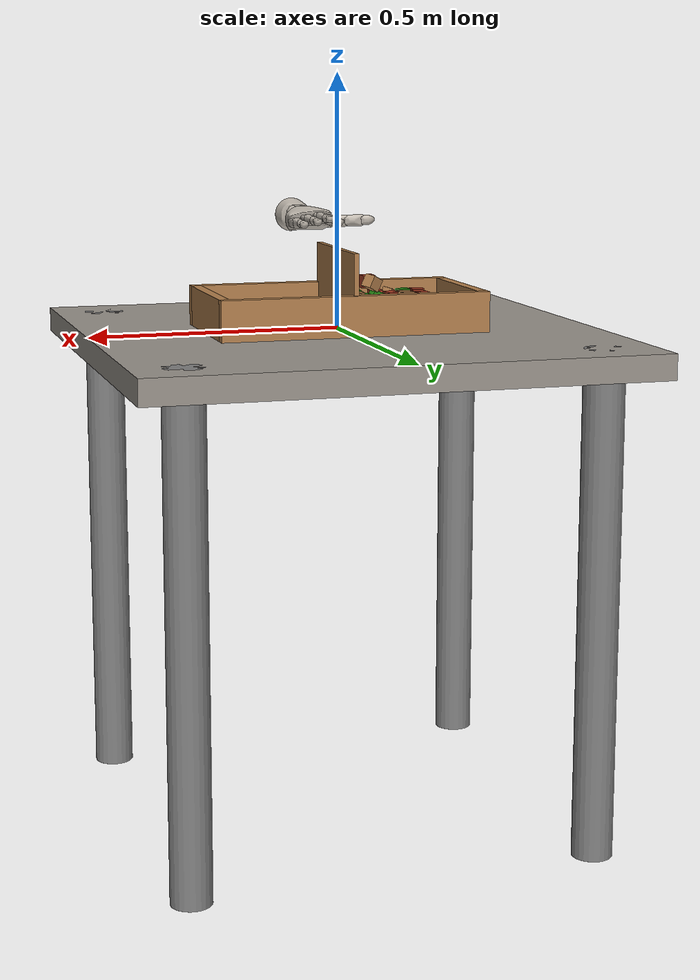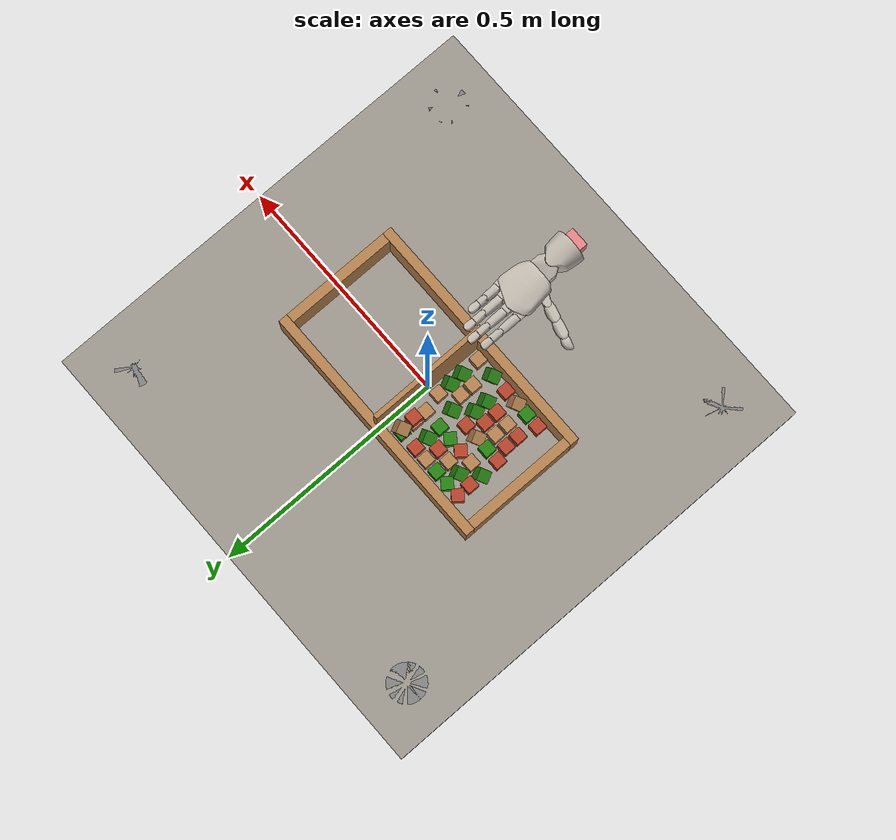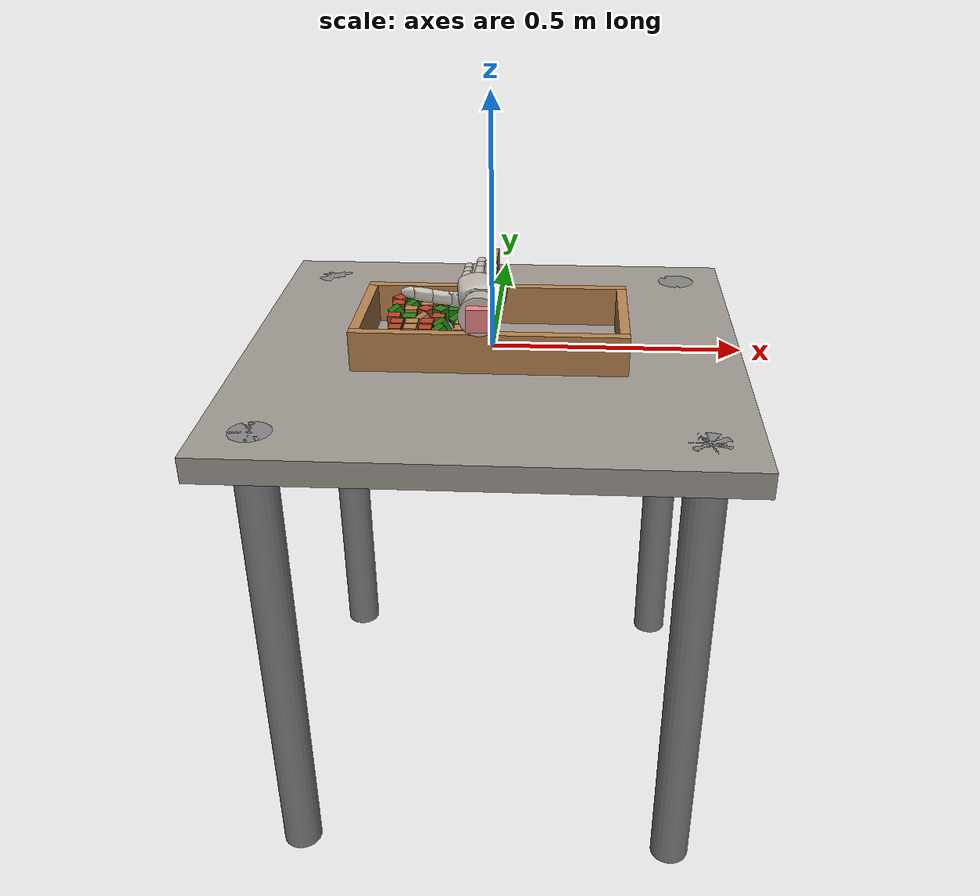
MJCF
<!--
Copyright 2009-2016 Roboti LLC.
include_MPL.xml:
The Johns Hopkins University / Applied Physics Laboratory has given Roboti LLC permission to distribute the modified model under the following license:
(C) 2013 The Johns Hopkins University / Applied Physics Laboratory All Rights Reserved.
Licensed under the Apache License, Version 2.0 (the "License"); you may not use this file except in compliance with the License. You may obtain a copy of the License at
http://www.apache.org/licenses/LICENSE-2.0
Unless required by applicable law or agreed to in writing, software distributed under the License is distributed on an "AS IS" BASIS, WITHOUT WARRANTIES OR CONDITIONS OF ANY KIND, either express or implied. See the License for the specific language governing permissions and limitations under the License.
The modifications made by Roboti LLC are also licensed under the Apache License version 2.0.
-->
<mujoco model="MPL boxes(v1.31)">
    <include file="include_MPL.xml"/>
    <include file="include_assets.xml"/>

    <option timestep="0.002" iterations="100" solver="CG"/>
    <size njmax="5000" nconmax="1000" nstack="1000000"/>

    <default>
        <default class="block">
            <geom type="box" size="0.0125 0.0125 0.0125"/>
        </default>
    </default>

    <worldbody>
        <geom type="plane" pos="0 0 0.001" size=".26 .13 .025" rgba=".5 .4 .2 1" />
        <geom type="box" pos="0 0 0.08"     size="0.005 0.13 0.08" material="MatWood"/>
        <geom type="box" pos="0 -0.13 0.04" size="0.27 0.01 0.04"  material="MatWood"/>
        <geom type="box" pos="0 0.13 0.04"  size="0.27 0.01 0.04"  material="MatWood"/>
        <geom type="box" pos="-0.26 0 0.04" size="0.01 0.12 0.04"  material="MatWood"/>
        <geom type="box" pos="0.26 0 0.04"  size="0.01 0.12 0.04"  material="MatWood"/>

      	<body name="blockL01" pos="-0.20 0.1 0.05" quat="1 0 0 0.5">
            <joint class="free"/>
            <geom class="block" material="MatWoodR"/>
        </body>

        <body name="blockL02" pos="-0.17 0.1 0.05" quat="1 0 0 0.5">
            <joint class="free"/>
            <geom class="block" material="MatWoodG"/>
        </body>

        <body name="blockL03" pos="-0.14 0.1 0.05" quat="1 1 0 0">
            <joint class="free"/>
            <geom class="block" material="MatWoodG"/>
        </body>

        <body name="blockL04" pos="-0.11 0.1 0.05">
            <joint class="free"/>
            <geom class="block" material="MatWoodB"/>
        </body>

        <body name="blockL05" pos="-0.08 0.1 0.05">
            <joint class="free"/>
            <geom class="block" material="MatWoodR"/>
        </body>

        <body name="blockL06" pos="-0.04 0.1 0.05">
            <joint class="free"/>
            <geom class="block" material="MatWoodG"/>
        </body>

        <body name="blockL07" pos="-0.04 0.1 0.1" quat="1 1 0 0.5">
            <joint class="free"/>
            <geom class="block" material="MatWoodB"/>
        </body>

        <body name="blockL08" pos="-0.20 0.07 0.05" quat="1 1 0 0">
            <joint class="free"/>
            <geom class="block" material="MatWoodR"/>
        </body>

        <body name="blockL09" pos="-0.17 0.07 0.05" quat="1 1 0 0.5">
            <joint class="free"/>
            <geom class="block" material="MatWoodG"/>
        </body>

        <body name="blockL10" pos="-0.14 0.07 0.05">
            <joint class="free"/>
            <geom class="block" material="MatWoodB"/>
        </body>

        <body name="blockL11" pos="-0.11 0.07 0.05" quat="1 1 0 0">
            <joint class="free"/>
            <geom class="block" material="MatWoodR"/>
        </body>

        <body name="blockL12" pos="-0.08 0.07 0.05" quat="1 1 0 0.5">
            <joint class="free"/>
            <geom class="block" material="MatWoodG"/>
        </body>

        <body name="blockL13" pos="-0.04 0.07 0.05">
            <joint class="free"/>
            <geom class="block" material="MatWoodB"/>
        </body>

        <body name="blockL14" pos="-0.04 0.07 0.1" quat="1 1 0 0">
            <joint class="free"/>
            <geom class="block" material="MatWoodR"/>
        </body>

        <body name="blockL15" pos="-0.20 0.04 0.05" quat="1 1 0 0.5">
            <joint class="free"/>
            <geom class="block" material="MatWoodG"/>
        </body>

        <body name="blockL16" pos="-0.17 0.04 0.05">
            <joint class="free"/>
            <geom class="block" material="MatWoodB"/>
        </body>

        <body name="blockL17" pos="-0.14 0.04 0.05" quat="1 0 0 0.5">
            <joint class="free"/>
            <geom class="block" material="MatWoodR"/>
        </body>

        <body name="blockL18" pos="-0.11 0.04 0.05" quat="1 0 0 0.5">
            <joint class="free"/>
            <geom class="block" material="MatWoodG"/>
        </body>

        <body name="blockL19" pos="-0.08 0.04 0.05" quat="1 1 0 0">
            <joint class="free"/>
            <geom class="block" material="MatWoodG"/>
        </body>

        <body name="blockL20" pos="-0.04 0.04 0.05">
            <joint class="free"/>
            <geom class="block" material="MatWoodB"/>
        </body>

        <body name="blockL21" pos="-0.20 0 0.05">
            <joint class="free"/>
            <geom class="block" material="MatWoodR"/>
        </body>

        <body name="blockL22" pos="-0.17 0 0.05">
            <joint class="free"/>
            <geom class="block" material="MatWoodG"/>
        </body>

        <body name="blockL23" pos="-0.14 0 0.05" quat="1 1 0 0.5">
            <joint class="free"/>
            <geom class="block" material="MatWoodB"/>
        </body>

        <body name="blockL24" pos="-0.11 0 0.05" quat="1 1 0 0">
            <joint class="free"/>
            <geom class="block" material="MatWoodR"/>
        </body>

        <body name="blockL25" pos="-0.07 0 0.05" quat="1 1 0 0.5">
            <joint class="free"/>
            <geom class="block" material="MatWoodG"/>
        </body>

        <body name="blockL26" pos="-0.03 0 0.05">
            <joint class="free"/>
            <geom class="block" material="MatWoodB"/>
        </body>

        <body name="blockL27" pos="-0.19 -0.03 0.05" quat="1 1 0 0">
            <joint class="free"/>
            <geom class="block" material="MatWoodR"/>
        </body>

        <body name="blockL28" pos="-0.03 -0.03 0.05" quat="1 1 0 0.5">
            <joint class="free"/>
            <geom class="block" material="MatWoodG"/>
        </body>

        <body name="blockL29" pos="-0.16 -0.03 0.05">
            <joint class="free"/>
            <geom class="block" material="MatWoodB"/>
        </body>

        <body name="blockL30" pos="-0.13 -0.03 0.05" quat="1 1 0 0">
            <joint class="free"/>
            <geom class="block" material="MatWoodR"/>
        </body>

        <body name="blockL31" pos="-0.10 -0.03 0.05" quat="1 1 0 0.5">
            <joint class="free"/>
            <geom class="block" material="MatWoodG"/>
        </body>

        <body name="blockL32" pos="-0.06 -0.03 0.05">
            <joint class="free"/>
            <geom class="block" material="MatWoodB"/>
        </body>

        <body name="blockL33" pos="-0.19 -0.06 0.05" quat="1 1 0 0">
            <joint class="free"/>
            <geom class="block" material="MatWoodR"/>
        </body>

        <body name="blockL34" pos="-0.03 -0.06 0.05" quat="1 1 0 0.5">
            <joint class="free"/>
            <geom class="block" material="MatWoodG"/>
        </body>

        <body name="blockL35" pos="-0.16 -0.06 0.05">
            <joint class="free"/>
            <geom class="block" material="MatWoodB"/>
        </body>

        <body name="blockL36" pos="-0.13 -0.06 0.05" quat="1 1 0 0">
            <joint class="free"/>
            <geom class="block" material="MatWoodR"/>
        </body>

        <body name="blockL37" pos="-0.10 -0.06 0.05" quat="1 1 0 0.5">
            <joint class="free"/>
            <geom class="block" material="MatWoodG"/>
        </body>

        <body name="blockL38" pos="-0.06 -0.06 0.05">
            <joint class="free"/>
            <geom class="block" material="MatWoodB"/>
        </body>

        <body name="blockL39" pos="-0.20 -0.1 0.05">
            <joint class="free"/>
            <geom class="block" material="MatWoodR"/>
        </body>

        <body name="blockL40" pos="-0.17 -0.1 0.05">
            <joint class="free"/>
            <geom class="block" material="MatWoodG"/>
        </body>

        <body name="blockL41" pos="-0.14 -0.1 0.05" quat="1 1 0 0.5">
            <joint class="free"/>
            <geom class="block" material="MatWoodB"/>
        </body>

        <body name="blockL42" pos="-0.11 -0.1 0.05" quat="1 1 0 0">
            <joint class="free"/>
            <geom class="block" material="MatWoodR"/>
        </body>

        <body name="blockL43" pos="-0.07 -0.1 0.05" quat="1 1 0 0.5">
            <joint class="free"/>
            <geom class="block" material="MatWoodG"/>
        </body>

        <body name="blockL44" pos="-0.03 -0.1 0.05">
            <joint class="free"/>
            <geom class="block" material="MatWoodB"/>
        </body>

    </worldbody>
</mujoco>

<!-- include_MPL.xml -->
<mujoco model="MPL(v1.31)">

    <compiler angle="radian" meshdir="mesh/" texturedir="texture/"/>
    <option timestep="0.002" iterations="50" apirate="50"/>
    <size njmax="600" nconmax="150" nstack="300000"/>

    <default>
		<default class="MPL">
			<geom material="MatMesh" contype="1" conaffinity="1" condim="4" margin="0.001"/>
        	<joint limited="true" damping="0.2" armature=".01"/>
        	<site material="MatTouch" type="ellipsoid" group="3"/>
            <position ctrllimited="true" kp="10"/>
		</default>

        <default class="IMU">
	        <site material="MatIMU" type="box" group="4"/>
        </default>

        <default class="free">
            <joint type="free" damping="0" armature="0" limited="false"/>
        </default>
    </default>

    <statistic extent="1" center="0 -0.2 0.2"/>

    <visual>
        <quality shadowsize="2048"/>
    	<map fogstart="6" fogend="10"/>
    	<headlight diffuse=".6 .6 .6" specular="0 0 0"/>
    </visual>

    <asset>
		<mesh name="index0" 	file="index0.obj"/>
		<mesh name="index1" 	file="index1.obj"/>
		<mesh name="index2" 	file="index2.obj"/>
		<mesh name="index3" 	file="index3.obj"/>
		<mesh name="middle0" 	file="middle0.obj"/>
		<mesh name="middle1" 	file="middle1.obj"/>
		<mesh name="middle2" 	file="middle2.obj"/>
		<mesh name="middle3" 	file="middle3.obj"/>
		<mesh name="palm" 		file="palm.obj"/>
		<mesh name="pinky0" 	file="pinky0.obj"/>
		<mesh name="pinky1" 	file="pinky1.obj"/>
		<mesh name="pinky2" 	file="pinky2.obj"/>
		<mesh name="pinky3" 	file="pinky3.obj"/>
		<mesh name="ring0" 		file="ring0.obj"/>
		<mesh name="ring1" 		file="ring1.obj"/>
		<mesh name="ring2" 		file="ring2.obj"/>
		<mesh name="ring3" 		file="ring3.obj"/>
		<mesh name="thumb0" 	file="thumb0.obj"/>
		<mesh name="thumb1" 	file="thumb1.obj"/>
		<mesh name="thumb2" 	file="thumb2.obj"/>
		<mesh name="thumb3" 	file="thumb3.obj"/>
		<mesh name="wristx" 	file="wristx.obj"/>
		<mesh name="wristy" 	file="wristy.obj"/>
		<mesh name="wristz" 	file="wristz.obj"/>

		<texture type="skybox" builtin="gradient" rgb1=".4 .6 .8" rgb2="0 0 0"
			width="100" height="100"/>
		<texture name="groundplane" type="2d" builtin="checker" rgb1=".2 .3 .4" rgb2=".1 .2 .3"
            width="100" height="100"/>
		<texture name="skin" type="cube" file="skin.png"/>
		<texture name="marble2d" type="2d" file="marble.png"/>
		<texture name="marblecube" type="cube" file="marble.png"/>

		<material name="groundplane" texture="groundplane" texrepeat="10 10"/>
		<material name="table2d" texture="marble2d" reflectance="0.3" rgba=".8 .8 .8 1"/>
		<material name="tablecube" texture="marblecube" rgba=".8 .8 .8 1"/>
        <material name="MatTouch" rgba=".3 .9 .3 .3"/>
        <material name="MatIMU" rgba=".1 .1 .9 1"/>
        <material name="MatMesh" texture="skin"/>
	</asset>

    <contact>
        <exclude body1="wristz" body2="wristy"/>
		<exclude body1="wristx" body2="thumb0"/>
		<exclude body1="palm" body2="thumb1"/>
        <exclude body1="palm" body2="index1"/>
        <exclude body1="palm" body2="middle1"/>
        <exclude body1="palm" body2="ring1"/>
        <exclude body1="palm" body2="pinky1"/>
    </contact>

    <worldbody>
        <light directional="false" cutoff="35" exponent="10" diffuse=".7 .7 .7" pos="0.4 -0.2 1.5" dir="-0.4 0.2 -1.5" specular=".3 .3 .3"/>

        <camera name="fixed" pos="0 -0.7 0.7" zaxis="0 -1 1" fovy="45" ipd="0.068"/>

		<geom type="plane" material="table2d" pos="0 0 0" size=".5 .5 .025"/>

		<geom contype="0" conaffinity="0" type="box" material="tablecube" pos="0 0 -0.026" size=".5 .5 .025"/>
		<geom contype="0" conaffinity="0" type="cylinder" fromto=".4 .4 -1.001 .4 .4 -0.001" size="0.04"/>
		<geom contype="0" conaffinity="0" type="cylinder" fromto="-.4 .4 -1.001 -.4 .4 -0.001" size="0.04"/>
		<geom contype="0" conaffinity="0" type="cylinder" fromto=".4 -.4 -1.001 .4 -.4 -0.001" size="0.04"/>
		<geom contype="0" conaffinity="0" type="cylinder" fromto="-.4 -.4 -1.001 -.4 -.4 -0.001" size="0.04"/>
        <geom contype="0" conaffinity="0" type="plane" pos="0 0 -1" size="10 10 0.25" material="groundplane"/>

        <body name="mocap" mocap="true" pos="0 -0.35 0.2" axisangle="0 0 1 3.141592">
            <geom type="box" group="1" size="0.02 0.02 0.02" contype="0" conaffinity="0" rgba=".9 .5 .5 1"/>
        </body>

		<!-- ======= ROBOT ======= -->
        <body childclass="MPL" name="forearm" pos="0 -0.35 0.2" axisangle="0 0 1 3.141592">
            <joint class="free"/>
            <geom type="cylinder" size="0.02 0.01" zaxis="0 1 0"/>
            <body name="wristy" pos="0 0 0">
                <inertial pos="-7.08369e-005 -0.0217787 -0.000286168" quat="0.707488 0.00581744 -0.0107421 0.70662" mass="0.0272932" diaginertia="2.46813e-005 1.77029e-005 1.71079e-005" />
                <geom type="mesh" mesh="wristy"/>
                <joint name="wrist_PRO" type="hinge" damping="0.4" pos="0 0 0" axis="0 1 0" range="-1.57 1.57"/>
                <body name="wristx" pos="-3.36826e-005 -0.0476452 0.00203763">
                    <inertial pos="0.00139174 -0.00975189 -0.00252668" quat="-0.0729226 0.705959 0.0352732 0.703605" mass="0.010691" diaginertia="5.04455e-006 4.25035e-006 3.25677e-006" />
                    <joint name="wrist_UDEV" damping="0.4" type="hinge" pos="0 0 0" axis="0 0 -1" range="-0.261 0.785"/>
                    <geom type="mesh" mesh="wristx"/>
                    <body name="wristz" pos="0.0001872 -0.03 -0.002094">
                        <inertial pos="0.000579016 -0.00125952 0.000455968" quat="0.527723 0.475346 0.521597 0.472749" mass="0.00602247" diaginertia="1.58133e-006 1.43102e-006 1.26861e-006" />
                        <joint name="wrist_FLEX" damping="0.4" type="hinge" pos="0 0 0" axis="1 0 0" range="-1.04 1.04"/>
                        <geom type="mesh" mesh="wristz"/>

		  			    <!-- ======= PALM  ======= -->
                        <body name="palm" pos="0.025625 0 0">
                            <inertial pos="-0.0217876 -0.0376147 0.00276997" quat="-0.146373 0.723094 0.0985561 0.66783" mass="0.119867" diaginertia="0.000123088 0.000100082 6.89467e-005" />
                            <geom type="mesh" mesh="palm"/>
                            <site name="palm_thumb" pos="-0.0052 -0.0438 -0.0182" size=".017 .03 .01"/>
                            <site name="palm_pinky" pos="-0.0358 -0.0401 -0.0183" size=".017 .03 .01"/>
                            <site name="palm_side" pos="-0.0604 -0.0329 -0.0048" size=".01 .03 .015"/>
                            <site name="palm_back" pos="-0.0246 -0.0446 0.018" size=".03 .035 .015"/>

                            <!-- ======= THUMB ======= -->
                            <body name="thumb0" pos="0.00835752 -0.0206978 -0.010093" quat="0.990237 0.0412644 -0.0209178 -0.13149">
                                <inertial pos="0.00863339 -0.000156884 -0.000945846" quat="0.408795 0.551643 0.541079 0.485602" mass="0.00336696" diaginertia="4.50769e-007 4.48758e-007 2.35017e-007" />
                                <joint name="thumb_ABD" type="hinge" pos="0 0 0" axis="0 1 0" range="0 2.07"/>
                                <geom type="mesh" mesh="thumb0"/>
                                <body name="thumb1" pos="0.0209172 -0.00084 0.0014476">
                                    <inertial pos="0.019024 0.000361131 -0.000186763" quat="0.5208 0.469572 0.484571 0.522934" mass="0.00596213" diaginertia="9.88001e-007 9.45125e-007 5.32989e-007" />
                                    <joint name="thumb_MCP" type="hinge" pos="0 0 0" axis="0 0 -1" range="0 1.03"/>
                                    <geom type="mesh" mesh="thumb1"/>
                                    <site name="thumb_proximal" pos="0.0173 -0.008 0.0009" size=".015 .0075 .01"/>
                                    <body name="thumb2" pos="0.0335 0 -0.0007426">
                                        <inertial pos="0.0188965 0.000375725 0.00065381" quat="0.502274 0.484638 0.475673 0.535333" mass="0.00599792" diaginertia="9.96692e-007 9.64948e-007 5.14416e-007" />
                                        <joint name="thumb_PIP" type="hinge" pos="0 0 0" axis="0 0 -1" range="0 1.03"/>
                                        <geom type="mesh" mesh="thumb2"/>
                                        <site name="thumb_medial" pos="0.0182 -0.008 0.0015" size=".015 .0075 .01"/>
                                        <body name="thumb3" pos="0.0335 0 0.0010854">
                                        	<inertial pos="0.0188965 0.000375725 0.00065381" quat="0.502274 0.484638 0.475673 0.535333" mass="0.00599792" diaginertia="9.96692e-007 9.64948e-007 5.14416e-007" />
                                            <joint name="thumb_DIP" type="hinge" pos="0 0 0" axis="0 0 -1" range="-0.819 1.28"/>
                                            <geom type="mesh" mesh="thumb3"/>
                                            <site name="thumb_distal" pos="0.0156 -0.007 0.0003" size=".015 .0075 .01" axisangle="0 0 1 0.2"/>
                                            <site class="IMU" name="thumb_IMU" pos="0.0099 -0.00052 0" quat=".5 .5 .5 .5" size=".003 .003 .003"/>
                                        </body>
                                    </body>
                                </body>
                            </body>

		  				    <!-- ======= INDEX ======= -->
                            <body name="index0" pos="0.00986485 -0.0658 0.00101221" quat="0.996195 0 0.0871557 0">
                                <inertial pos="-0.000142572 -0.00548494 0.000206145" quat="0.699132 0.714861 -0.000723869 0.013694" mass="0.00295579" diaginertia="4.22462e-007 4.02281e-007 1.93868e-007" />
                                <joint name="index_ABD" type="hinge" pos="0 0 0" axis="0 0 1" range="0 0.345"/>
                                <geom type="mesh" mesh="index0"/>
                                <body name="index1" pos="6.26e-005 -0.018 0">
                                    <inertial pos="0.000406487 -0.0213125 0.000655609" quat="0.698452 0.715642 -0.00415384 0.0023049" mass="0.00478235" diaginertia="8.18599e-007 7.95693e-007 3.06254e-007" />
                                    <joint name="index_MCP" type="hinge" pos="0 0 0" axis="1 0 0" range="-0.785 1.57"/>
                                    <geom type="mesh" mesh="index1"/>
                                    <site name="index_proximal" pos="0 -0.0235 -0.007" size=".009 .015 .0075"/>
                                    <body name="index2" pos="0.001086 -0.0435 0.0005">
                                        <inertial pos="-0.000841462 -0.012689 0.000572665" quat="0.734882 0.677481 -0.028511 0.0124827" mass="0.00344764" diaginertia="3.63962e-007 3.59059e-007 1.05304e-007" />
                                        <joint name="index_PIP" type="hinge" pos="0 0 0" axis="1 0 0" range="0 1.72"/>
                                        <geom type="mesh" mesh="index2"/>
                                        <site name="index_medial" pos="0 -0.009 -0.0047" size=".0075 .01 .006"/>
                                        <body name="index3" pos="-0.000635 -0.0245 0">
                                            <inertial pos="4.32004e-005 -0.0125318 0.000903476" quat="0.516251 0.4829 -0.483241 0.516498" mass="0.00274415" diaginertia="1.19635e-007 1.09202e-007 7.77873e-008" />
                                            <joint name="index_DIP" type="hinge" pos="0 0 0" axis="1 0 0" range="0 1.38"/>
                                            <geom type="mesh" mesh="index3"/>
                                            <site name="index_distal" pos="0 -0.0132 -0.0038" size=".0075 .01 .006"/>
                                            <site class="IMU" name="index_IMU" pos="0 -0.0093 0.00063" quat=".5 .5 -.5 .5" size=".003 .003 .003"/>
                                        </body>
                                    </body>
                                </body>
                            </body>

		  				    <!-- ======= MIDDLE ======= -->
                            <body name="middle0" pos="-0.012814 -0.0779014 0.00544608" quat="-3.14 0.0436194 0 0">
                                <inertial pos="-0.000142567 -0.00548493 0.000206162" quat="0.699131 0.714862 -0.000723874 0.013694" mass="0.00295579" diaginertia="4.22461e-007 4.02281e-007 1.93868e-007" />
                                <geom type="mesh" mesh="middle0"/>
                                <body name="middle1" pos="6.26e-005 -0.018 0">
                                    <inertial pos="0.000406411 -0.0213125 0.00065565" quat="0.698451 0.715642 -0.00415503 0.00230486" mass="0.00478229" diaginertia="8.18595e-007 7.9569e-007 3.06253e-007" />
                                    <joint name="middle_MCP" type="hinge" pos="0 0 0" axis="1 0 0" range="-0.785 1.57"/>
                                    <geom type="mesh" mesh="middle1"/>
                                    <site name="middle_proximal" pos="0 -0.025 -0.007" size=".009 .015 .0075"/>
                                    <body name="middle2" pos="0.001086 -0.0435 0.0005">
                                        <inertial pos="-0.000841444 -0.012689 0.00057266" quat="0.734883 0.677482 -0.0284727 0.0124412" mass="0.00344765" diaginertia="3.63962e-007 3.5906e-007 1.05304e-007" />
                                        <joint name="middle_PIP" type="hinge" pos="0 0 0" axis="1 0 0" range="0 1.73"/>
                                        <geom type="mesh" mesh="middle2"/>
                                        <site name="middle_medial" pos="0 -0.0146 -0.0047" size=".0075 .01 .006"/>
                                        <body name="middle3" pos="-0.000635 -0.0245 0">
                                            <inertial pos="4.31236e-005 -0.0125318 0.000903446" quat="0.516263 0.482913 -0.483228 0.516487" mass="0.00274417" diaginertia="1.19635e-007 1.09202e-007 7.77884e-008" />
                                            <joint name="middle_DIP" type="hinge" pos="0 0 0" axis="1 0 0" range="0 1.38"/>
                                            <geom type="mesh" mesh="middle3"/>
                                            <site name="middle_distal" pos="0 -0.0129 -0.0038" size=".0075 .01 .006"/>
                                            <site class="IMU" name="middle_IMU" pos="0 -0.0093 0.00063" quat=".5 .5 -.5 .5" size=".003 .003 .003"/>
                                        </body>
                                    </body>
                                </body>
                            </body>

	  				        <!-- ======= RING ======= -->
                            <body name="ring0" pos="-0.0354928 -0.0666999 0.00151221" quat="0.996195 0 -0.0871557 0">
                                <inertial pos="-0.000142559 -0.00548494 0.000206147" quat="0.699132 0.714861 -0.000720946 0.013691" mass="0.00295579" diaginertia="4.22462e-007 4.02281e-007 1.93868e-007" />
                                <joint name="ring_ABD" type="hinge" pos="0 0 0" axis="0 0 -1" range="0 0.345"/>
                                <geom type="mesh" mesh="ring0"/>
                                <body name="ring1" pos="6.26e-005 -0.018 0">
                                    <inertial pos="0.000406447 -0.0213125 0.00065563" quat="0.698451 0.715642 -0.00415675 0.00230715" mass="0.00478232" diaginertia="8.18597e-007 7.95692e-007 3.06254e-007" />
                                    <joint name="ring_MCP" type="hinge" pos="0 0 0" axis="1 0 0" range="-0.785 1.57"/>
                                    <geom type="mesh" mesh="ring1"/>
                                    <site name="ring_proximal" pos="0 -0.0259 -0.007" size=".009 .015 .0075"/>
                                    <body name="ring2" pos="0.001086 -0.0435 0.0005">
                                        <inertial pos="-0.000841518 -0.012689 0.000572674" quat="0.73488 0.677478 -0.0285773 0.0125557" mass="0.00344767" diaginertia="3.63963e-007 3.59061e-007 1.05305e-007" />
                                        <joint name="ring_PIP" type="hinge" pos="0 0 0" axis="1 0 0" range="0 1.72"/>
                                        <geom type="mesh" mesh="ring2"/>
                                        <site name="ring_medial" pos="0 -0.0137 -0.0047" size=".0075 .01 .006"/>
                                        <body name="ring3" pos="-0.000635 -0.0245 0">
                                            <inertial pos="4.31973e-005 -0.0125318 0.000903457" quat="0.516255 0.482902 -0.483238 0.516495" mass="0.00274416" diaginertia="1.19635e-007 1.09202e-007 7.77877e-008" />
                                            <joint name="ring_DIP" type="hinge" pos="0 0 0" axis="1 0 0" range="0 1.38"/>
                                            <geom type="mesh" mesh="ring3"/>
                                            <site name="ring_distal" pos="0 -0.0117 -0.0038" size=".0075 .01 .006"/>
                                            <site class="IMU" name="ring_IMU" pos="0 -0.0093 0.00063" quat=".5 .5 -.5 .5" size=".003 .003 .003"/>
                                        </body>
                                    </body>
                                </body>
                            </body>

		  				    <!-- ======= LITTLE ======= -->
                            <body name="pinky0" pos="-0.0562459 -0.0554001 -0.00563858" quat="0.996195 0 -0.0871557 0">
                                <inertial pos="-0.000142559 -0.00538484 0.000206147" quat="0.699132 0.714861 -0.000721037 0.0136911" mass="0.00295579" diaginertia="4.22462e-007 4.02281e-007 1.93868e-007" />
                                <joint name="pinky_ABD" type="hinge" pos="0 0 0" axis="0 0 -1" range="0 0.345"/>
                                <geom type="mesh" mesh="pinky0"/>
                                <body name="pinky1" pos="6.26e-005 -0.0178999 0">
                                    <inertial pos="0.000458624 -0.0160478 0.000924735" quat="0.685529 0.72723 0.021252 -0.0270914" mass="0.0034099" diaginertia="4.03391e-007 3.84061e-007 2.19866e-007" />
                                    <joint name="pinky_MCP" type="hinge" pos="0 0 0" axis="1 0 0" range="-0.785 1.57"/>
                                    <geom type="mesh" mesh="pinky1"/>
                                    <site name="pinky_proximal" pos="0 -0.021 -0.0066" size=".009 .013 .0075"/>
                                    <body name="pinky2" pos="0.000578 -0.033 0.0005">
                                        <inertial pos="-0.000270832 -0.00914628 0.000738493" quat="0.746786 0.664476 -4.11065e-005 -0.0279675" mass="0.00250622" diaginertia="1.79089e-007 1.75934e-007 7.44543e-008" />
                                        <joint name="pinky_PIP" type="hinge" pos="0 0 0" axis="1 0 0" range="0 1.72"/>
                                        <geom type="mesh" mesh="pinky2"/>
                                        <site name="pinky_medial" pos="0 -0.0117 -0.0047" size=".0075 .01 .006"/>
                                        <body name="pinky3" pos="-4.78e-005 -0.0175 0">
                                            <inertial pos="3.85026e-005 -0.0125047 0.000912295" quat="0.516037 0.484447 -0.483043 0.515448" mass="0.00273265" diaginertia="1.19141e-007 1.08629e-007 7.77271e-008" />
                                            <joint name="pinky_DIP" type="hinge" pos="0 0 0" axis="1 0 0" range="0 1.38"/>
                                            <geom type="mesh" mesh="pinky3"/>
                                            <site name="pinky_distal" pos="0 -0.0121 -0.0038" size=".0075 .01 .006"/>
                                            <site class="IMU" name="pinky_IMU" pos="0 -0.0093 0.00063" quat=".5 .5 -.5 .5" size=".003 .003 .003"/>
                                        </body>
                                    </body>
                                </body>
                            </body>
                        </body>
                    </body>
                </body>
            </body>
        </body>
    </worldbody>

	<sensor>
        <jointpos name="Sjp_wrist_PRO"	joint="wrist_PRO"/>
    	<jointpos name="Sjp_wrist_UDEV" joint="wrist_UDEV"/>
    	<jointpos name="Sjp_wrist_FLEX" joint="wrist_FLEX"/>
        <jointpos name="Sjp_thumb_ABD"	joint="thumb_ABD"/>
        <jointpos name="Sjp_thumb_MCP"  joint="thumb_MCP"/>
        <jointpos name="Sjp_thumb_PIP"  joint="thumb_PIP"/>
        <jointpos name="Sjp_thumb_DIP"  joint="thumb_DIP"/>
    	<jointpos name="Sjp_index_ABD"  joint="index_ABD"/>
    	<jointpos name="Sjp_index_MCP"  joint="index_MCP"/>
    	<jointpos name="Sjp_index_PIP"  joint="index_PIP"/>
    	<jointpos name="Sjp_index_DIP"  joint="index_DIP"/>
    	<jointpos name="Sjp_middle_MCP" joint="middle_MCP"/>
    	<jointpos name="Sjp_middle_PIP" joint="middle_PIP"/>
    	<jointpos name="Sjp_middle_DIP"	joint="middle_DIP"/>
    	<jointpos name="Sjp_ring_ABD"   joint="ring_ABD"/>
    	<jointpos name="Sjp_ring_MCP"   joint="ring_MCP"/>
    	<jointpos name="Sjp_ring_PIP"   joint="ring_PIP"/>
    	<jointpos name="Sjp_ring_DIP"   joint="ring_DIP"/>
    	<jointpos name="Sjp_pinky_ABD"  joint="pinky_ABD"/>
    	<jointpos name="Sjp_pinky_MCP"  joint="pinky_MCP"/>
    	<jointpos name="Sjp_pinky_PIP"  joint="pinky_PIP"/>
    	<jointpos name="Sjp_pinky_DIP"  joint="pinky_DIP"/>

		<jointvel name="Sjv_wrist_PRO"  joint="wrist_PRO"/>
    	<jointvel name="Sjv_wrist_UDEV" joint="wrist_UDEV"/>
    	<jointvel name="Sjv_wrist_FLEX" joint="wrist_FLEX"/>
        <jointvel name="Sjv_thumb_ABD"  joint="thumb_ABD"/>
        <jointvel name="Sjv_thumb_MCP"  joint="thumb_MCP"/>
        <jointvel name="Sjv_thumb_PIP"  joint="thumb_PIP"/>
        <jointvel name="Sjv_thumb_DIP"  joint="thumb_DIP"/>
    	<jointvel name="Sjv_index_ABD"  joint="index_ABD"/>
    	<jointvel name="Sjv_index_MCP"  joint="index_MCP"/>
    	<jointvel name="Sjv_index_PIP"  joint="index_PIP"/>
    	<jointvel name="Sjv_index_DIP"  joint="index_DIP"/>
    	<jointvel name="Sjv_middle_MCP" joint="middle_MCP"/>
    	<jointvel name="Sjv_middle_PIP" joint="middle_PIP"/>
    	<jointvel name="Sjv_middle_DIP" joint="middle_DIP"/>
    	<jointvel name="Sjv_ring_ABD"   joint="ring_ABD"/>
    	<jointvel name="Sjv_ring_MCP"   joint="ring_MCP"/>
    	<jointvel name="Sjv_ring_PIP"   joint="ring_PIP"/>
    	<jointvel name="Sjv_ring_DIP"   joint="ring_DIP"/>
    	<jointvel name="Sjv_pinky_ABD"  joint="pinky_ABD"/>
    	<jointvel name="Sjv_pinky_MCP"  joint="pinky_MCP"/>
    	<jointvel name="Sjv_pinky_PIP"  joint="pinky_PIP"/>
    	<jointvel name="Sjv_pinky_DIP"  joint="pinky_DIP"/>

        <actuatorpos name="Sap_wrist_PRO" 	actuator="A_wrist_PRO" />
    	<actuatorpos name="Sap_wrist_UDEV"	actuator="A_wrist_UDEV" />
    	<actuatorpos name="Sap_wrist_FLEX"	actuator="A_wrist_FLEX" />
        <actuatorpos name="Sap_thumb_ABD" 	actuator="A_thumb_ABD" />
        <actuatorpos name="Sap_thumb_MCP" 	actuator="A_thumb_MCP" />
        <actuatorpos name="Sap_thumb_PIP" 	actuator="A_thumb_PIP" />
        <actuatorpos name="Sap_thumb_DIP" 	actuator="A_thumb_DIP" />
        <actuatorpos name="Sap_index_ABD" 	actuator="A_index_ABD" />
    	<actuatorpos name="Sap_index_MCP" 	actuator="A_index_MCP" />
    	<actuatorpos name="Sap_middle_MCP"	actuator="A_middle_MCP"/>
    	<actuatorpos name="Sap_ring_MCP"  	actuator="A_ring_MCP"  />
        <actuatorpos name="Sap_pinky_ABD" 	actuator="A_pinky_ABD" />
    	<actuatorpos name="Sap_pinky_MCP" 	actuator="A_pinky_MCP" />

        <actuatorvel name="Sav_wrist_PRO" 	actuator="A_wrist_PRO" />
        <actuatorvel name="Sav_wrist_UDEV"	actuator="A_wrist_UDEV"/>
        <actuatorvel name="Sav_wrist_FLEX"	actuator="A_wrist_FLEX"/>
        <actuatorvel name="Sav_thumb_ABD" 	actuator="A_thumb_ABD" />
        <actuatorvel name="Sav_thumb_MCP" 	actuator="A_thumb_MCP" />
        <actuatorvel name="Sav_thumb_PIP" 	actuator="A_thumb_PIP" />
        <actuatorvel name="Sav_thumb_DIP" 	actuator="A_thumb_DIP" />
        <actuatorvel name="Sav_index_ABD" 	actuator="A_index_ABD" />
        <actuatorvel name="Sav_index_MCP" 	actuator="A_index_MCP" />
        <actuatorvel name="Sav_middle_MCP"	actuator="A_middle_MCP"/>
        <actuatorvel name="Sav_ring_MCP"  	actuator="A_ring_MCP"  />
        <actuatorvel name="Sav_pinky_ABD" 	actuator="A_pinky_ABD" />
        <actuatorvel name="Sav_pinky_MCP" 	actuator="A_pinky_MCP" />

        <actuatorfrc name="Saf_wrist_PRO" 	actuator="A_wrist_PRO"/>
        <actuatorfrc name="Saf_wrist_UDEV" 	actuator="A_wrist_UDEV"/>
        <actuatorfrc name="Saf_wrist_FLEX" 	actuator="A_wrist_FLEX"/>
        <actuatorfrc name="Saf_thumb_ABD" 	actuator="A_thumb_ABD"/>
        <actuatorfrc name="Saf_thumb_MCP" 	actuator="A_thumb_MCP"/>
        <actuatorfrc name="Saf_thumb_PIP" 	actuator="A_thumb_PIP"/>
        <actuatorfrc name="Saf_thumb_DIP" 	actuator="A_thumb_DIP"/>
        <actuatorfrc name="Saf_index_ABD" 	actuator="A_index_ABD"/>
        <actuatorfrc name="Saf_index_MCP" 	actuator="A_index_MCP"/>
        <actuatorfrc name="Saf_middle_MCP" 	actuator="A_middle_MCP"/>
        <actuatorfrc name="Saf_ring_MCP"  	actuator="A_ring_MCP"/>
        <actuatorfrc name="Saf_pinky_ABD" 	actuator="A_pinky_ABD"/>
        <actuatorfrc name="Saf_pinky_MCP" 	actuator="A_pinky_MCP"/>

    	<accelerometer name="S_thumb_IMU" 	site="thumb_IMU"/>
    	<accelerometer name="S_index_IMU" 	site="index_IMU"/>
    	<accelerometer name="S_middle_IMU" 	site="middle_IMU"/>
    	<accelerometer name="S_ring_IMU" 	site="ring_IMU"/>
    	<accelerometer name="S_pinky_IMU" 	site="pinky_IMU"/>

        <gyro                               site="thumb_IMU"/>
        <gyro                               site="index_IMU"/>
        <gyro                               site="middle_IMU"/>
        <gyro                               site="ring_IMU"/>
        <gyro                               site="pinky_IMU"/>

    	<touch name="S_palm_thumb" 		site="palm_thumb"/>
    	<touch name="S_palm_pinky" 		site="palm_pinky"/>
    	<touch name="S_palm_side" 		site="palm_side"/>
    	<touch name="S_palm_back" 		site="palm_back"/>
    	<touch name="S_thumb_proximal" 	site="thumb_proximal"/>
    	<touch name="S_thumb_medial" 	site="thumb_medial"/>
    	<touch name="S_thumb_distal" 	site="thumb_distal"/>
    	<touch name="S_index_proximal" 	site="index_proximal"/>
    	<touch name="S_index_medial" 	site="index_medial"/>
    	<touch name="S_index_distal" 	site="index_distal"/>
    	<touch name="S_middle_proximal" site="middle_proximal"/>
    	<touch name="S_middle_medial" 	site="middle_medial"/>
    	<touch name="S_middle_distal" 	site="middle_distal"/>
    	<touch name="S_ring_proximal" 	site="ring_proximal"/>
    	<touch name="S_ring_medial" 	site="ring_medial"/>
    	<touch name="S_ring_distal" 	site="ring_distal"/>
    	<touch name="S_pinky_proximal" 	site="pinky_proximal"/>
    	<touch name="S_pinky_medial" 	site="pinky_medial"/>
    	<touch name="S_pinky_distal" 	site="pinky_distal"/>
	</sensor>

	<tendon>
		<!--Index coupler tendons-->
		<fixed name="T_index32_cpl" range="0 1">
			<joint joint="index_DIP"  coef="0.00705"/>
			<joint joint="index_PIP"  coef="-0.00805"/>
		</fixed>
		<fixed name="T_index21_cpl" range="0 1">
			<joint joint="index_PIP"  coef="0.010"/>
			<joint joint="index_MCP"  coef="-0.010"/>
		</fixed>

		<!--Middle coupler tendons-->
		<fixed name="T_middle32_cpl">
			<joint joint="middle_DIP"  coef="0.00705"/>
			<joint joint="middle_PIP"  coef="-0.00805"/>
		</fixed>
		<fixed name="T_middle21_cpl">
			<joint joint="middle_PIP"  coef="0.010"/>
			<joint joint="middle_MCP"  coef="-0.010"/>
		</fixed>

		<!--Ring coupler tendons-->
		<fixed name="T_ring32_cpl">
			<joint joint="ring_DIP"  coef="0.00705"/>
			<joint joint="ring_PIP"  coef="-0.00805"/>
		</fixed>
		<fixed name="T_ring21_cpl">
			<joint joint="ring_PIP"  coef="0.010"/>
			<joint joint="ring_MCP"  coef="-0.010"/>
		</fixed>

		<!--Little coupler tendons-->
		<fixed name="T_pinky32_cpl">
			<joint joint="pinky_DIP"  coef="0.00705"/>
			<joint joint="pinky_PIP"  coef="-0.00805"/>
		</fixed>
		<fixed name="T_pinky21_cpl">
			<joint joint="pinky_PIP"  coef="0.010"/>
			<joint joint="pinky_MCP"  coef="-0.010"/>
		</fixed>

	</tendon>

	<equality>
        <weld body1="mocap" body2="forearm" solref="0.01 1" solimp=".9 .9 0.01"/>

		<!-- DIP-PIP-MCP Couplings -->
		<tendon name="E_index32_cpl" 	tendon1="T_index32_cpl"/>
		<tendon name="E_index21_cpl" 	tendon1="T_index21_cpl"/>
		<tendon name="E_middle32_cpl" 	tendon1="T_middle32_cpl"/>
		<tendon name="E_middle21_cpl" 	tendon1="T_middle21_cpl"/>
		<tendon name="E_ring32_cpl" 	tendon1="T_ring32_cpl"/>
		<tendon name="E_ring21_cpl" 	tendon1="T_ring21_cpl"/>
		<tendon name="E_pinky32_cpl" 	tendon1="T_pinky32_cpl"/>
		<tendon name="E_pinky21_cpl" 	tendon1="T_pinky21_cpl"/>

		<!-- AD-AB Coupling -->
		<joint name="ring_pinky_cpl" joint1="ring_ABD" joint2="pinky_ABD" polycoef="0 0.5 0 0 0"/>
	</equality>

	<actuator>
		<!-- Wrist -->
        <position name="A_wrist_PRO"  class="MPL" joint="wrist_PRO"  ctrlrange="-1.57 1.57"/>
		<position name="A_wrist_UDEV" class="MPL" joint="wrist_UDEV" ctrlrange="-0.26 0.79"/>
		<position name="A_wrist_FLEX" class="MPL" joint="wrist_FLEX" ctrlrange="-1 1"/>

        <!-- Thumb -->
        <position name="A_thumb_ABD"  class="MPL" joint="thumb_ABD"  ctrlrange="0 2.1"/>
        <position name="A_thumb_MCP"  class="MPL" joint="thumb_MCP"  ctrlrange="0 1.0"/>
        <position name="A_thumb_PIP"  class="MPL" joint="thumb_PIP"  ctrlrange="0 1.0"/>
        <position name="A_thumb_DIP"  class="MPL" joint="thumb_DIP"  ctrlrange="-0.82 1.3"/>

		<!-- Fingers -->
        <position name="A_index_ABD"  class="MPL" joint="index_ABD"  ctrlrange="0 0.34"/>
		<position name="A_index_MCP"  class="MPL" joint="index_MCP"  ctrlrange="0 1.6"/>
		<position name="A_middle_MCP" class="MPL" joint="middle_MCP" ctrlrange="0 1.6"/>
		<position name="A_ring_MCP"   class="MPL" joint="ring_MCP" 	 ctrlrange="0 1.6"/>
        <position name="A_pinky_ABD"  class="MPL" joint="pinky_ABD"  ctrlrange="0 0.34"/>
		<position name="A_pinky_MCP"  class="MPL" joint="pinky_MCP"  ctrlrange="0 1.6"/>
	</actuator>
</mujoco>

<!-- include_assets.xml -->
<mujoco>
	<asset>
		<texture file="wood.png"/>
		<texture name="wood2d" type="2d" file="wood.png"/>
		<texture file="square.png"/>
		<texture name="foil" file="silverRaw.png"/>
        <texture file="woodb.png"/>

		<material name="MatFoil" texture="foil" specular="1" shininess=".3"  rgba=".9 .9 .9 1"/>
		<material name="MatPlane" specular=".3" shininess=".3" rgba=".3 .3 .2 1"/>
        <material name="MatWood" texture="wood" specular="0.4" shininess=".1" texrepeat="3 3"/>
        <material name="MatSquare" texture="square" specular="1" shininess=".6"  rgba=".8 .8 .8 1"/>
        <material name="MatWoodR" texture="wood" specular="1" shininess=".3"  rgba="1 0.5 0.5 1"/>
        <material name="MatWoodG" texture="wood" specular="1" shininess=".3"  rgba="0.2 1 0.2 1"/>
        <material name="MatWoodB" texture="woodb" specular="1" shininess=".3"/>
	</asset>
</mujoco>
